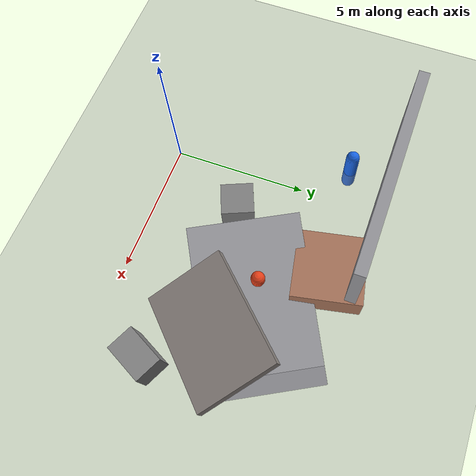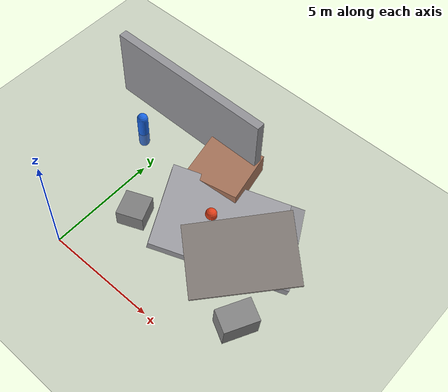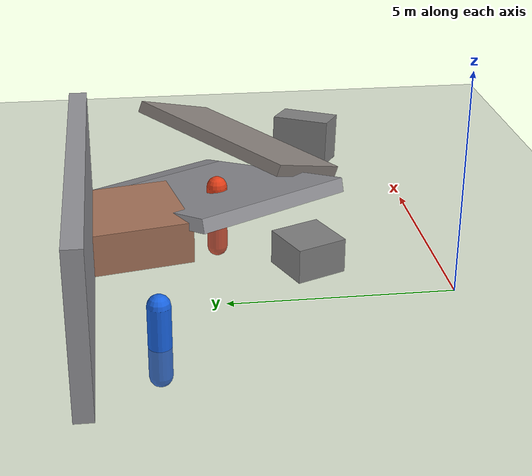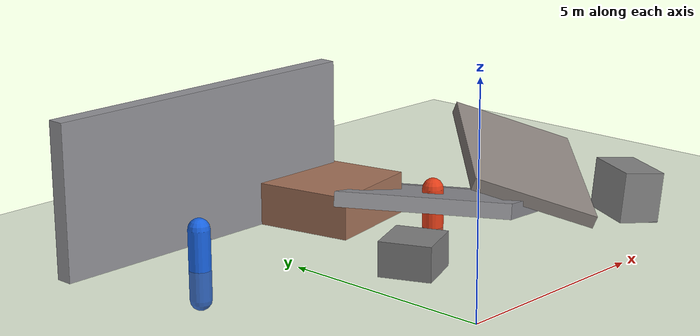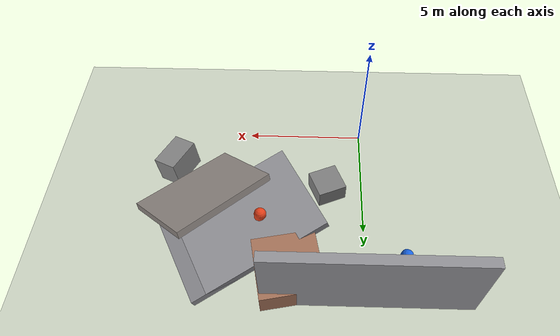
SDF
<?xml version="1.0" ?>
<!-- SIH26177 Search-and-Rescue Disaster Scenario World for Gazebo Fortress -->
<sdf version="1.8">
  <world name="disaster_world">
    <!-- Physics parameters -->
    <physics name="1ms" type="ignored">
      <max_step_size>0.002</max_step_size>
      <real_time_factor>1.0</real_time_factor>
    </physics>

    <!-- Required Gazebo Fortress Core Systems -->
    <plugin
      filename="ignition-gazebo-physics-system"
      name="ignition::gazebo::systems::Physics">
    </plugin>
    <plugin
      filename="ignition-gazebo-user-commands-system"
      name="ignition::gazebo::systems::UserCommands">
    </plugin>
    <plugin
      filename="ignition-gazebo-scene-broadcaster-system"
      name="ignition::gazebo::systems::SceneBroadcaster">
    </plugin>
    <plugin
      filename="ignition-gazebo-sensors-system"
      name="ignition::gazebo::systems::Sensors">
      <render_engine>ogre2</render_engine>
    </plugin>
    <plugin
      filename="ignition-gazebo-imu-system"
      name="ignition::gazebo::systems::Imu">
    </plugin>
    <plugin
      filename="ignition-gazebo-navsat-system"
      name="ignition::gazebo::systems::NavSat">
    </plugin>

    <!-- Global GPS Coordinates (Disaster Base Station) -->
    <spherical_coordinates>
      <surface_model>EARTH_WGS84</surface_model>
      <world_frame_orientation>ENU</world_frame_orientation>
      <latitude_deg>28.613939</latitude_deg>
      <longitude_deg>77.209021</longitude_deg>
      <elevation>219.0</elevation>
      <heading_deg>0</heading_deg>
    </spherical_coordinates>

    <!-- Self-Contained Sun Directional Light -->
    <light type="directional" name="sun">
      <cast_shadows>true</cast_shadows>
      <pose>0 0 20 0 0 0</pose>
      <diffuse>0.85 0.85 0.85 1</diffuse>
      <specular>0.2 0.2 0.2 1</specular>
      <attenuation>
        <range>1000</range>
        <constant>0.9</constant>
        <linear>0.01</linear>
        <quadratic>0.001</quadratic>
      </attenuation>
      <direction>-0.5 0.2 -0.85</direction>
    </light>

    <!-- Self-Contained Ground Plane with Disaster Terrain Texture -->
    <model name="ground_plane">
      <static>true</static>
      <link name="ground_link">
        <collision name="ground_collision">
          <geometry>
            <plane>
              <normal>0 0 1</normal>
              <size>100 100</size>
            </plane>
          </geometry>
        </collision>
        <visual name="ground_visual">
          <geometry>
            <plane>
              <normal>0 0 1</normal>
              <size>100 100</size>
            </plane>
          </geometry>
          <material>
            <ambient>0.45 0.45 0.47 1</ambient>
            <diffuse>0.45 0.45 0.47 1</diffuse>
            <specular>0.1 0.1 0.1 1</specular>
          </material>
        </visual>
      </link>
    </model>

    <!-- Disaster Scene Structural Collapse 1: Collapsed Concrete Slabs -->
    <model name="collapsed_building_rubble_1">
      <static>true</static>
      <pose>5.0 5.0 0.4 0 0.25 0.5</pose>
      <link name="slab_link_1">
        <collision name="slab_col_1">
          <geometry>
            <box>
              <size>6.0 4.0 0.35</size>
            </box>
          </geometry>
        </collision>
        <visual name="slab_vis_1">
          <geometry>
            <box>
              <size>6.0 4.0 0.35</size>
            </box>
          </geometry>
          <material>
            <ambient>0.6 0.6 0.62 1</ambient>
            <diffuse>0.6 0.6 0.62 1</diffuse>
          </material>
        </visual>
      </link>
    </model>

    <!-- Secondary Inclined Concrete Slab -->
    <model name="collapsed_slab_inclined">
      <static>true</static>
      <pose>6.5 4.0 1.2 0.35 -0.15 0.8</pose>
      <link name="slab_link_2">
        <collision name="slab_col_2">
          <geometry>
            <box>
              <size>4.5 3.0 0.3</size>
            </box>
          </geometry>
        </collision>
        <visual name="slab_vis_2">
          <geometry>
            <box>
              <size>4.5 3.0 0.3</size>
            </box>
          </geometry>
          <material>
            <ambient>0.55 0.52 0.50 1</ambient>
            <diffuse>0.55 0.52 0.50 1</diffuse>
          </material>
        </visual>
      </link>
    </model>

    <!-- Masonry Debris Mound -->
    <model name="masonry_debris_pile_1">
      <static>true</static>
      <pose>3.0 7.0 0.5 0 0 0.2</pose>
      <link name="debris_link_1">
        <collision name="debris_col_1">
          <geometry>
            <box>
              <size>2.5 2.5 1.0</size>
            </box>
          </geometry>
        </collision>
        <visual name="debris_vis_1">
          <geometry>
            <box>
              <size>2.5 2.5 1.0</size>
            </box>
          </geometry>
          <material>
            <ambient>0.65 0.45 0.35 1</ambient>
            <diffuse>0.65 0.45 0.35 1</diffuse>
          </material>
        </visual>
      </link>
    </model>

    <!-- Concrete Blocks (Obstacles for UAV Altitude/LiDAR Avoidance) -->
    <model name="concrete_block_a">
      <static>true</static>
      <pose>1.5 3.0 0.4 0 0 0.4</pose>
      <link name="block_link_a">
        <collision name="block_col_a">
          <geometry>
            <box>
              <size>1.2 1.2 0.8</size>
            </box>
          </geometry>
        </collision>
        <visual name="block_vis_a">
          <geometry>
            <box>
              <size>1.2 1.2 0.8</size>
            </box>
          </geometry>
          <material>
            <ambient>0.5 0.5 0.5 1</ambient>
            <diffuse>0.5 0.5 0.5 1</diffuse>
          </material>
        </visual>
      </link>
    </model>

    <model name="concrete_block_b">
      <static>true</static>
      <pose>8.0 2.0 0.6 0.1 0 1.1</pose>
      <link name="block_link_b">
        <collision name="block_col_b">
          <geometry>
            <box>
              <size>1.5 1.0 1.2</size>
            </box>
          </geometry>
        </collision>
        <visual name="block_vis_b">
          <geometry>
            <box>
              <size>1.5 1.0 1.2</size>
            </box>
          </geometry>
          <material>
            <ambient>0.52 0.52 0.52 1</ambient>
            <diffuse>0.52 0.52 0.52 1</diffuse>
          </material>
        </visual>
      </link>
    </model>

    <!-- Damaged Vertical Retaining Wall Obstacle -->
    <model name="damaged_retaining_wall">
      <static>true</static>
      <pose>0.0 8.0 1.75 0 0 0</pose>
      <link name="wall_link">
        <collision name="wall_col">
          <geometry>
            <box>
              <size>8.0 0.4 3.5</size>
            </box>
          </geometry>
        </collision>
        <visual name="wall_vis">
          <geometry>
            <box>
              <size>8.0 0.4 3.5</size>
            </box>
          </geometry>
          <material>
            <ambient>0.58 0.58 0.6 1</ambient>
            <diffuse>0.58 0.58 0.6 1</diffuse>
          </material>
        </visual>
      </link>
    </model>

    <!-- Survivor Target 1 (High-visibility orange clothing near rubble) -->
    <model name="survivor_target_1">
      <static>true</static>
      <pose>4.2 4.8 0.1 0 0 0.7</pose>
      <link name="survivor_link_1">
        <collision name="survivor_col_1">
          <geometry>
            <capsule>
              <radius>0.25</radius>
              <length>1.6</length>
            </capsule>
          </geometry>
        </collision>
        <visual name="survivor_vis_1">
          <geometry>
            <capsule>
              <radius>0.25</radius>
              <length>1.6</length>
            </capsule>
          </geometry>
          <material>
            <ambient>0.9 0.25 0.1 1</ambient>
            <diffuse>0.9 0.25 0.1 1</diffuse>
          </material>
        </visual>
      </link>
    </model>

    <!-- Survivor Target 2 (Blue clothing near wall) -->
    <model name="survivor_target_2">
      <static>true</static>
      <pose>-1.5 6.5 0.1 0 0 -0.5</pose>
      <link name="survivor_link_2">
        <collision name="survivor_col_2">
          <geometry>
            <capsule>
              <radius>0.25</radius>
              <length>1.6</length>
            </capsule>
          </geometry>
        </collision>
        <visual name="survivor_vis_2">
          <geometry>
            <capsule>
              <radius>0.25</radius>
              <length>1.6</length>
            </capsule>
          </geometry>
          <material>
            <ambient>0.1 0.4 0.9 1</ambient>
            <diffuse>0.1 0.4 0.9 1</diffuse>
          </material>
        </visual>
      </link>
    </model>

    <!-- Ambient Scene Settings -->
    <scene>
      <ambient>0.6 0.6 0.6 1.0</ambient>
      <background>0.7 0.8 0.9 1.0</background>
      <shadows>true</shadows>
    </scene>

  </world>
</sdf>
